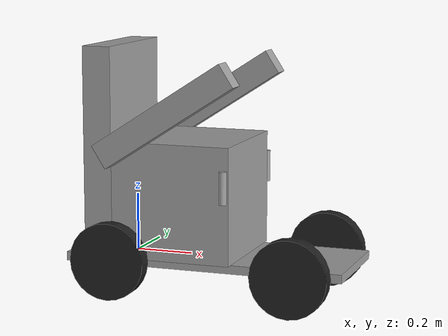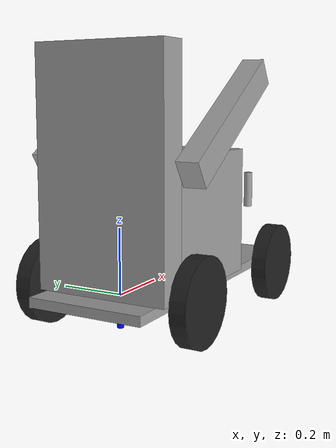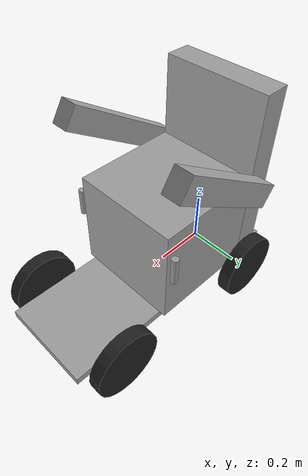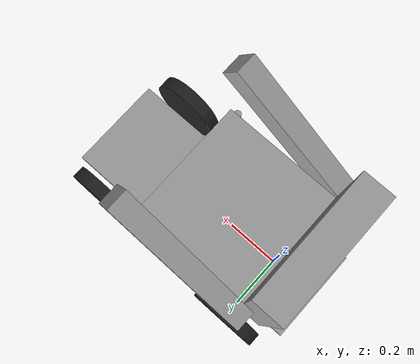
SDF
<sdf version="1.9">
  <model name="whill_model_cr2">
    <link name="base_link">
      <inertial>
        <pose>0.2240816326530612 0 0.1062244897959184 0 0 0</pose>
        <mass>49</mass>
        <inertia>
          <ixx>3.9861765306122452</ixx>
          <ixy>0</ixy>
          <ixz>0.80784489795918391</ixz>
          <iyy>4.730960204081633</iyy>
          <iyz>0</iyz>
          <izz>3.7447836734693891</izz>
        </inertia>
      </inertial>
      <collision name="base_link_fixed_joint_lump__base_floor_collision">
        <pose>0.3 0 0 0 0 0</pose>
        <geometry>
          <box>
            <size>0.985 0.37 0.03</size>
          </box>
        </geometry>
      </collision>
      <collision name="base_link_fixed_joint_lump__backrest_collision_1">
        <pose>-0.06 0 0.375 0 0 0</pose>
        <geometry>
          <box>
            <size>0.1 0.42 0.72</size>
          </box>
        </geometry>
      </collision>
      <collision name="base_link_fixed_joint_lump__seat_collision_2">
        <pose>0.2 0 0.215 0 0 0</pose>
        <geometry>
          <box>
            <size>0.42 0.42 0.4</size>
          </box>
        </geometry>
      </collision>
      <collision name="base_link_fixed_joint_lump__left_arm_collision_3">
        <pose>0.2 0.245 0.515 0 1 0</pose>
        <geometry>
          <box>
            <size>0.09 0.07 0.535</size>
          </box>
        </geometry>
      </collision>
      <collision name="base_link_fixed_joint_lump__left_sensor_arm_collision_4">
        <pose>0.4 0.235 0.285 0 0 0</pose>
        <geometry>
          <cylinder>
            <length>0.11</length>
            <radius>0.012999999999999999</radius>
          </cylinder>
        </geometry>
      </collision>
      <collision name="base_link_fixed_joint_lump__right_arm_collision_5">
        <pose>0.2 -0.245 0.515 0 1 0</pose>
        <geometry>
          <box>
            <size>0.09 0.07 0.535</size>
          </box>
        </geometry>
      </collision>
      <collision name="base_link_fixed_joint_lump__right_sensor_arm_collision_6">
        <pose>0.4 -0.235 0.285 0 0 0</pose>
        <geometry>
          <cylinder>
            <length>0.11</length>
            <radius>0.012999999999999999</radius>
          </cylinder>
        </geometry>
      </collision>
      <visual name="base_link_visual">
        <pose>0 0 0 0 0 0</pose>
        <geometry>
          <cylinder>
            <length>0.20000000000000001</length>
            <radius>0.01</radius>
          </cylinder>
        </geometry>
        <material>
          <diffuse>0 0 1 1</diffuse>
          <ambient>0 0 1 1</ambient>
        </material>
      </visual>
      <visual name="base_link_fixed_joint_lump__base_floor_visual_1">
        <pose>0.3 0 0 0 0 0</pose>
        <geometry>
          <box>
            <size>0.985 0.37 0.03</size>
          </box>
        </geometry>
        <material>
          <diffuse>0.625 0.625 0.625 1</diffuse>
          <ambient>0.625 0.625 0.625 1</ambient>
        </material>
      </visual>
      <visual name="base_link_fixed_joint_lump__backrest_visual_2">
        <pose>-0.06 0 0.375 0 0 0</pose>
        <geometry>
          <box>
            <size>0.1 0.42 0.72</size>
          </box>
        </geometry>
        <material>
          <diffuse>0.625 0.625 0.625 1</diffuse>
          <ambient>0.625 0.625 0.625 1</ambient>
        </material>
      </visual>
      <visual name="base_link_fixed_joint_lump__seat_visual_3">
        <pose>0.2 0 0.215 0 0 0</pose>
        <geometry>
          <box>
            <size>0.42 0.42 0.4</size>
          </box>
        </geometry>
        <material>
          <diffuse>0.625 0.625 0.625 1</diffuse>
          <ambient>0.625 0.625 0.625 1</ambient>
        </material>
      </visual>
      <visual name="base_link_fixed_joint_lump__left_arm_visual_4">
        <pose>0.2 0.245 0.515 0 1 0</pose>
        <geometry>
          <box>
            <size>0.09 0.07 0.535</size>
          </box>
        </geometry>
        <material>
          <diffuse>0.625 0.625 0.625 1</diffuse>
          <ambient>0.625 0.625 0.625 1</ambient>
        </material>
      </visual>
      <visual name="base_link_fixed_joint_lump__left_sensor_arm_visual_5">
        <pose>0.4 0.235 0.285 0 0 0</pose>
        <geometry>
          <cylinder>
            <length>0.11</length>
            <radius>0.012999999999999999</radius>
          </cylinder>
        </geometry>
        <material>
          <diffuse>0.625 0.625 0.625 1</diffuse>
          <ambient>0.625 0.625 0.625 1</ambient>
        </material>
      </visual>
      <visual name="base_link_fixed_joint_lump__right_arm_visual_6">
        <pose>0.2 -0.245 0.515 0 1 0</pose>
        <geometry>
          <box>
            <size>0.09 0.07 0.535</size>
          </box>
        </geometry>
        <material>
          <diffuse>0.625 0.625 0.625 1</diffuse>
          <ambient>0.625 0.625 0.625 1</ambient>
        </material>
      </visual>
      <visual name="base_link_fixed_joint_lump__right_sensor_arm_visual_7">
        <pose>0.4 -0.235 0.285 0 0 0</pose>
        <geometry>
          <cylinder>
            <length>0.11</length>
            <radius>0.012999999999999999</radius>
          </cylinder>
        </geometry>
        <material>
          <diffuse>0.625 0.625 0.625 1</diffuse>
          <ambient>0.625 0.625 0.625 1</ambient>
        </material>
      </visual>
    </link>
    <joint name="left_front_wheel_joint" type="revolute">
      <pose relative_to="base_link">0.63 -0.235 0 -1.571 0 0</pose>
      <parent>base_link</parent>
      <child>left_front_wheel</child>
      <axis>
        <xyz>0 0 -1</xyz>
        <limit>
          <lower>-10000000000000000</lower>
          <upper>10000000000000000</upper>
        </limit>
        <dynamics>
          <spring_reference>0</spring_reference>
          <spring_stiffness>0</spring_stiffness>
        </dynamics>
      </axis>
    </joint>
    <link name="left_front_wheel">
      <pose relative_to="left_front_wheel_joint">0 0 0 0 0 0</pose>
      <inertial>
        <pose>0 0 0 0 0 0</pose>
        <mass>1</mass>
        <inertia>
          <ixx>1</ixx>
          <ixy>0</ixy>
          <ixz>0</ixz>
          <iyy>1</iyy>
          <iyz>0</iyz>
          <izz>1</izz>
        </inertia>
      </inertial>
      <collision name="left_front_wheel_collision">
        <pose>0 0 0 0 0 0</pose>
        <geometry>
          <cylinder>
            <length>0.050000000000000003</length>
            <radius>0.13250000000000001</radius>
          </cylinder>
        </geometry>
      </collision>
      <visual name="left_front_wheel_visual">
        <pose>0 0 0 0 0 0</pose>
        <geometry>
          <cylinder>
            <length>0.050000000000000003</length>
            <radius>0.13250000000000001</radius>
          </cylinder>
        </geometry>
        <material>
          <diffuse>0.125 0.125 0.125 1</diffuse>
          <ambient>0.125 0.125 0.125 1</ambient>
        </material>
      </visual>
    </link>
    <joint name="left_wheel_joint" type="revolute">
      <pose relative_to="base_link">0 0.26 0.015 1.571 0 0</pose>
      <parent>base_link</parent>
      <child>left_wheel</child>
      <axis>
        <xyz>0 0 1</xyz>
        <limit>
          <lower>-10000000000000000</lower>
          <upper>10000000000000000</upper>
        </limit>
        <dynamics>
          <spring_reference>0</spring_reference>
          <spring_stiffness>0</spring_stiffness>
        </dynamics>
      </axis>
    </joint>
    <link name="left_wheel">
      <pose relative_to="left_wheel_joint">0 0 0 0 0 0</pose>
      <inertial>
        <pose>0 0 0 0 0 0</pose>
        <mass>0.5</mass>
        <inertia>
          <ixx>0.0013541667</ixx>
          <ixy>0</ixy>
          <ixz>0</ixz>
          <iyy>0.0013541667</iyy>
          <iyz>0</iyz>
          <izz>0.0025000000000000001</izz>
        </inertia>
      </inertial>
      <collision name="left_wheel_collision">
        <pose>0 0 0 0 0 0</pose>
        <geometry>
          <cylinder>
            <length>0.050000000000000003</length>
            <radius>0.13250000000000001</radius>
          </cylinder>
        </geometry>
      </collision>
      <visual name="left_wheel_visual">
        <pose>0 0 0 0 0 0</pose>
        <geometry>
          <cylinder>
            <length>0.050000000000000003</length>
            <radius>0.13250000000000001</radius>
          </cylinder>
        </geometry>
        <material>
          <diffuse>0.125 0.125 0.125 1</diffuse>
          <ambient>0.125 0.125 0.125 1</ambient>
        </material>
      </visual>
    </link>
    <joint name="right_front_wheel_joint" type="revolute">
      <pose relative_to="base_link">0.63 0.235 0 1.571 0 0</pose>
      <parent>base_link</parent>
      <child>right_front_wheel</child>
      <axis>
        <xyz>0 0 1</xyz>
        <limit>
          <lower>-10000000000000000</lower>
          <upper>10000000000000000</upper>
        </limit>
        <dynamics>
          <spring_reference>0</spring_reference>
          <spring_stiffness>0</spring_stiffness>
        </dynamics>
      </axis>
    </joint>
    <link name="right_front_wheel">
      <pose relative_to="right_front_wheel_joint">0 0 0 0 0 0</pose>
      <inertial>
        <pose>0 0 0 0 0 0</pose>
        <mass>1</mass>
        <inertia>
          <ixx>1</ixx>
          <ixy>0</ixy>
          <ixz>0</ixz>
          <iyy>1</iyy>
          <iyz>0</iyz>
          <izz>1</izz>
        </inertia>
      </inertial>
      <collision name="right_front_wheel_collision">
        <pose>0 0 0 0 0 0</pose>
        <geometry>
          <cylinder>
            <length>0.050000000000000003</length>
            <radius>0.13250000000000001</radius>
          </cylinder>
        </geometry>
      </collision>
      <visual name="right_front_wheel_visual">
        <pose>0 0 0 0 0 0</pose>
        <geometry>
          <cylinder>
            <length>0.050000000000000003</length>
            <radius>0.13250000000000001</radius>
          </cylinder>
        </geometry>
        <material>
          <diffuse>0.125 0.125 0.125 1</diffuse>
          <ambient>0.125 0.125 0.125 1</ambient>
        </material>
      </visual>
    </link>
    <joint name="right_wheel_joint" type="revolute">
      <pose relative_to="base_link">0 -0.26 0.015 -1.571 0 0</pose>
      <parent>base_link</parent>
      <child>right_wheel</child>
      <axis>
        <xyz>0 0 -1</xyz>
        <limit>
          <lower>-10000000000000000</lower>
          <upper>10000000000000000</upper>
        </limit>
        <dynamics>
          <spring_reference>0</spring_reference>
          <spring_stiffness>0</spring_stiffness>
        </dynamics>
      </axis>
    </joint>
    <link name="right_wheel">
      <pose relative_to="right_wheel_joint">0 0 0 0 0 0</pose>
      <inertial>
        <pose>0 0 0 0 0 0</pose>
        <mass>0.5</mass>
        <inertia>
          <ixx>0.0013541667</ixx>
          <ixy>0</ixy>
          <ixz>0</ixz>
          <iyy>0.0013541667</iyy>
          <iyz>0</iyz>
          <izz>0.0025000000000000001</izz>
        </inertia>
      </inertial>
      <collision name="right_wheel_collision">
        <pose>0 0 0 0 0 0</pose>
        <geometry>
          <cylinder>
            <length>0.050000000000000003</length>
            <radius>0.13250000000000001</radius>
          </cylinder>
        </geometry>
      </collision>
      <visual name="right_wheel_visual">
        <pose>0 0 0 0 0 0</pose>
        <geometry>
          <cylinder>
            <length>0.050000000000000003</length>
            <radius>0.13250000000000001</radius>
          </cylinder>
        </geometry>
        <material>
          <diffuse>0.125 0.125 0.125 1</diffuse>
          <ambient>0.125 0.125 0.125 1</ambient>
        </material>
      </visual>
    </link>

    <frame name="backrest_joint" attached_to="base_floor">
      <pose>-0.36 0 0.375 0 -0 0</pose>
    </frame>
    <frame name="backrest" attached_to="backrest_joint" />
    <frame name="left_arm_joint" attached_to="seat">
      <pose>0 0.245 0.3 0 1 0</pose>
    </frame>
    <frame name="left_arm" attached_to="left_arm_joint" />
    <frame name="left_sensor_arm_joint" attached_to="seat">
      <pose>0.2 0.235 0.07 0 -0 0</pose>
    </frame>
    <frame name="left_sensor_arm" attached_to="left_sensor_arm_joint" />
    <frame name="right_arm_joint" attached_to="seat">
      <pose>0 -0.245 0.3 0 1 0</pose>
    </frame>
    <frame name="right_arm" attached_to="right_arm_joint" />
    <frame name="right_sensor_arm_joint" attached_to="seat">
      <pose>0.2 -0.235 0.07 0 -0 0</pose>
    </frame>
    <frame name="right_sensor_arm" attached_to="right_sensor_arm_joint" />
    <frame name="seat_joint" attached_to="base_floor">
      <pose>-0.1 0 0.215 0 -0 0</pose>
    </frame>
    <frame name="seat" attached_to="seat_joint" />
    <frame name="base_floor_joint" attached_to="base_link">
      <pose>0.3 0 0 0 -0 0</pose>
    </frame>
    <frame name="base_floor" attached_to="base_floor_joint" />
    <plugin filename="libignition-gazebo-diff-drive-system.so" name="ignition::gazebo::systems::DiffDrive">
      <!-- 左右の駆動ジョイント名（モデルのジョイント名に合わせる） -->
      <left_joint>left_wheel_joint</left_joint>
      <right_joint>right_wheel_joint</right_joint>

      <!-- 物理パラメータ（モデルに合わせて調整） -->
      <wheel_separation>0.5</wheel_separation>
      <wheel_radius>0.1325</wheel_radius>

      <!-- トピックはフルパスで明示（ros_gz_bridgeで使っているパスに合わせる） -->
      <topic>/model/whill_test/cmd_vel</topic>
      <odom_topic>/model/whill_test/odometry</odom_topic>

      <!-- 参照フレーム（必要なら ign model の出力に合わせて修正） -->
      <odom_frame>whill_test/odom</odom_frame>
      <base_frame>whill_test/base_link</base_frame>
    </plugin>
  </model>
</sdf>
